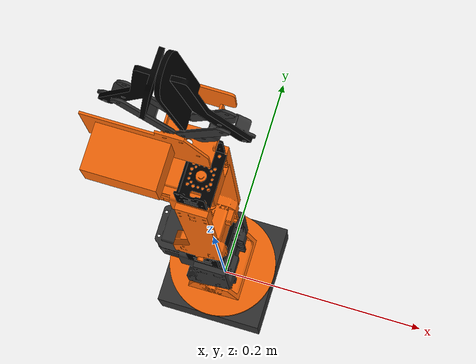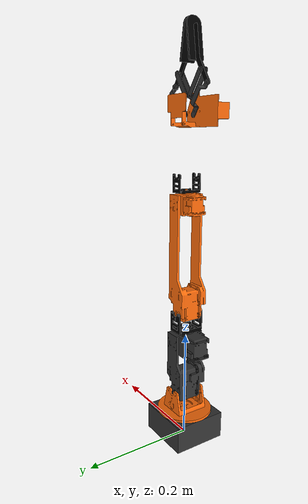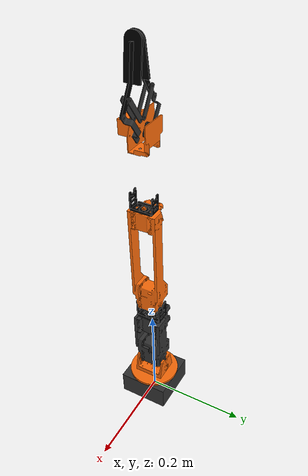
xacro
<?xml version="1.0"?>

<robot name="clam"
    xmlns:sensor="http://playerstage.sourceforge.net/gazebo/xmlschema/#sensor"
    xmlns:controller="http://playerstage.sourceforge.net/gazebo/xmlschema/#controller"
    xmlns:interface="http://playerstage.sourceforge.net/gazebo/xmlschema/#interface">

  <!-- Include materials -->
  <include filename="$(find clam_description)/urdf/materials.urdf.xacro" />

  <!-- Constants -->
  <property name="M_SCALE" value="0.001 0.001 0.001"/>
  <property name="M_PI" value="3.14159"/>

  <!-- BASE LINK -->

  <link name="base_link">
    <visual>
      <origin xyz="0 0 0" rpy="${M_PI/2} 0 0" /> <!-- rotate PI/2 -->
      <geometry>
	<mesh filename="package://clam_description/stl/base_link.STL" scale="${M_SCALE}" />
      </geometry>
      <material name="Grey" />
    </visual>

    <collision>
      <origin xyz="0 0 0" rpy="${M_PI/2} 0 0" /> <!-- rotate PI/2 -->
      <geometry>
	<mesh filename="package://clam_description/stl/base_link_simple.STL" scale="${M_SCALE}" />
      </geometry>
    </collision>>

    <inertial>
      <mass value="25" />
      <inertia ixx="1.0" ixy ="0.0" ixz="0.0" iyy="1.0" iyz="0.0" izz="1.0" />
    </inertial>
  </link>

  <joint name="shoulder_pan_joint" type="revolute">
    <parent link="base_link"/>
    <child link="shoulder_pan_link"/>
    <origin xyz="0 0 0.05" rpy="0 ${M_PI/2} ${M_PI*0}" />
    <axis xyz="-1 0 0" />
    <limit effort="300" velocity="1" lower="-2.61799387799" upper="1.98394848567"/>
    <dynamics damping="50" friction="1"/>
  </joint>

  <!-- SHOULDER PAN LINK -->
  <link name="shoulder_pan_link" >
    <visual>
      <origin xyz="0 0 0" rpy="0 0 ${M_PI/2}" />
      <geometry>
	<mesh filename="package://clam_description/stl/shoulder_pan_link.STL" scale="${M_SCALE}" />
      </geometry>
      <material name="Orange" />
    </visual>

    <collision>
      <origin xyz="0 0 0" rpy="0 0 ${M_PI/2}" />
      <geometry>
	<mesh filename="package://clam_description/stl/shoulder_pan_link_simple.STL" scale="${M_SCALE}" />
      </geometry>
    </collision>
  </link>

  <joint name="shoulder_pitch_joint" type="revolute">
    <parent link="shoulder_pan_link"/>
    <child link="shoulder_pitch_link"/>
    <origin xyz="-0.041 0.0 0.0" rpy="-${M_PI/2} 0 ${M_PI/2}" />
    <axis xyz="1 0 0" />
    <limit effort="300" velocity="1" lower="-1.19962513147" upper="1.89994105047" />
    <dynamics damping="50" friction="1"/>
  </joint>

  <!-- SHOULDER PITCH LINK -->
  <link name="shoulder_pitch_link" >
    <visual>
      <origin xyz="-0.002 0 -0.000" rpy="${M_PI/2} ${M_PI} ${M_PI/2}" />
      <geometry>
	<mesh filename="package://clam_description/stl/shoulder_pitch_link.STL" scale="${M_SCALE}" />
      </geometry>
      <material name="Grey" />
    </visual>

    <collision>
      <origin xyz="-0.002 0 -0.000" rpy="${M_PI/2} ${M_PI} ${M_PI/2}" />
      <geometry>
	<mesh filename="package://clam_description/stl/shoulder_pitch_link_simple.STL" scale="${M_SCALE}" />
      </geometry>
    </collision>
  </link>

  <joint name="elbow_roll_joint" type="revolute">
    <parent link="shoulder_pitch_link"/>
    <child link="elbow_roll_link"/>
    <origin xyz="-0.001 0 0.121" rpy="${M_PI} ${M_PI/2} 0" />
    <axis xyz="-1 0 0" />
    <limit effort="300" velocity="1" lower="-2.61799387799" upper="0.705631162427" />
    <dynamics damping="50" friction="1"/>
  </joint>

  <!-- ELBOW ROLL LINK -->
  <link name="elbow_roll_link" >
    <visual>
      <origin xyz="-0.035 0.0 0.0" rpy="${M_PI} ${M_PI/2} ${M_PI/2}" />
      <geometry>
	<mesh filename="package://clam_description/stl/elbow_roll_link.STL" scale="${M_SCALE}" />
      </geometry>
      <material name="Black" />
    </visual>

    <collision>
      <origin xyz="-0.035 0.0 0.0" rpy="${M_PI} ${M_PI/2} ${M_PI/2}" />
      <geometry>
	<mesh filename="package://clam_description/stl/elbow_roll_link_simple.STL" scale="${M_SCALE}" />
      </geometry>
    </collision>
  </link>

  <joint name="elbow_pitch_joint" type="revolute">
    <parent link="elbow_roll_link"/>
    <child link="elbow_pitch_link"/>
    <origin xyz="-0.035 0 0.0009" rpy="0 ${M_PI/2} 0" />
    <axis xyz="1 0 0" />
    <limit effort="300" velocity="1" lower="-1.5953400194" upper="1.93281579274" />
    <dynamics damping="50" friction="1"/>
  </joint>

  <!-- ELBOW PITCH LINK -->
  <link name="elbow_pitch_link" >
    <visual>
      <origin xyz="0.0 0 -${0.035*0}" rpy="${M_PI/2} 0 ${M_PI/2+M_PI}" />
      <geometry>
	<mesh filename="package://clam_description/stl/elbow_pitch_link.STL" scale="${M_SCALE}" />
      </geometry>
      <material name="Orange" />
    </visual>

    <collision>
      <origin xyz="0.0 0 -${0.035*0}" rpy="${M_PI/2} 0 ${M_PI/2+M_PI}" />
      <geometry>
	<mesh filename="package://clam_description/stl/elbow_pitch_link_simple.STL" scale="${M_SCALE}" />
      </geometry>
    </collision>
  </link>

  <joint name="wrist_roll_joint" type="revolute">
    <parent link="elbow_pitch_link"/>
    <child link="wrist_roll_link"/>
    <origin xyz="0.0 0.008 -.248" rpy="0 ${M_PI/2} ${M_PI}" />
    <axis xyz="1 0 0" />
    <limit effort="300" velocity="1" lower="-2.61799387799" upper="2.6128806087" />
    <dynamics damping="50" friction="1"/>
  </joint>

  <!-- WRIST ROLL LINK -->
  <link name="wrist_roll_link" >
    <visual>
      <origin xyz="0 0 0" rpy="0 ${M_PI/2} ${M_PI/2}" />
      <geometry>
	<mesh filename="package://clam_description/stl/wrist_roll_link.STL" scale="${M_SCALE}" />
      </geometry>
      <material name="Black" />
    </visual>

    <collision>
      <origin xyz="0 0 0" rpy="0 ${M_PI/2} ${M_PI/2}" />
      <geometry>
	<mesh filename="package://clam_description/stl/wrist_roll_link_simple.STL" scale="${M_SCALE}" />
      </geometry>
    </collision>
  </link>

  <joint name="wrist_pitch_joint" type="revolute">
    <parent link="wrist_roll_link"/>
    <child link="wrist_pitch_link"/>
    <origin xyz="0.0 0.0 ${1*0.002}" rpy="0 ${M_PI/2} 0" />
    <axis xyz="1 0 0" />
    <limit effort="300" velocity="1" lower="-1.5953400194" upper="1.98394848567" />
    <dynamics damping="50" friction="1"/>
  </joint>

  <!-- WRIST PITCH LINK -->
  <link name="wrist_pitch_link">
    <visual>
      <origin xyz="0 0 0" rpy="${M_PI} -${M_PI/2} 0" />
      <geometry>
	<mesh filename="package://clam_description/stl/wrist_pitch_link.STL" scale="${M_SCALE}" />
      </geometry>
      <material name="Grey" />
    </visual>

    <collision>
      <origin xyz="0 0 0" rpy="${M_PI} -${M_PI/2} 0" />
      <geometry>
	<mesh filename="package://clam_description/stl/wrist_pitch_link_simple.STL" scale="${M_SCALE}" />
      </geometry>
    </collision>
  </link>

  <joint name="gripper_roll_joint" type="revolute">
    <parent link="wrist_pitch_link"/>
    <child link="gripper_roll_link"/>
    <origin xyz="0 0 0.08" rpy="0 -${M_PI/2} 0" />
    <axis xyz="1 0 0" />
    <limit effort="300" velocity="1" lower="-2.61799387799" upper="2.6128806087" />
    <dynamics damping="50" friction="1"/>
  </joint>

  <!-- GRIPPER ROLL LINK -->
  <link name="gripper_roll_link">
    <visual>
      <origin xyz="0 0 0" rpy="0 0 0" />
      <geometry>
	<mesh filename="package://clam_description/stl/gripper_grip_link.STL" scale="1 1 1" />
      </geometry>
      <material name="Orange" />
    </visual>
    <collision>
      <origin xyz="0 0 0" rpy="0 0 0" />
      <geometry>
	<mesh filename="package://clam_description/stl/gripper_grip_link.STL" scale="1 1 1" />
      </geometry>
    </collision>
  </link>

  <joint name="l_gripper_aft_link_joint" type="revolute">
    <parent link="gripper_roll_link"/>
    <child link="l_gripper_aft_link"/>
    <origin xyz="0.025 0.0169 0" rpy="0 -${M_PI/2} ${34.58*M_PI/180}" />
    <axis xyz="1 0 0" />
    <limit effort="300" velocity="1" lower="${0*M_PI/180}" upper="${53*M_PI/180}" />
    <dynamics damping="50" friction="1"/>
  </joint>

  <joint name="r_gripper_aft_link_joint" type="revolute">
    <parent link="gripper_roll_link"/>
    <child link="r_gripper_aft_link"/>
    <origin xyz="0.025 -0.0117 0" rpy="0 -${M_PI/2} ${-34.58*M_PI/180}" />
    <axis xyz="1 0 0" />
    <limit effort="300" velocity="1" lower="-3.14" upper="3.14" />
    <mimic joint="l_gripper_aft_link_joint" multiplier="-1.0" offset="0.0" />
    <dynamics damping="50" friction="1"/>
  </joint>

  <joint name="l_gripper_fwd_link_joint" type="revolute">
    <parent link="gripper_roll_link"/>
    <child link="l_gripper_fwd_link"/>
    <origin xyz="0.05 0.0074 0.007" rpy="0 -${M_PI/2} ${214.58*M_PI/180}" />
    <axis xyz="1 0 0" />
    <limit effort="300" velocity="1" lower="0" upper="1.57" />
    <mimic joint="l_gripper_aft_link_joint" multiplier="1.0" offset="0" />
    <dynamics damping="50" friction="1"/>
  </joint>

  <joint name="r_gripper_fwd_link_joint" type="revolute">
    <parent link="gripper_roll_link"/>
    <child link="r_gripper_fwd_link"/>
    <origin xyz="0.05 -0.0026 0.007" rpy="0 -${M_PI/2} ${145.42*M_PI/180}" />
    <axis xyz="1 0 0" />
    <limit effort="300" velocity="1" lower="-1.57" upper="0" />
    <mimic joint="l_gripper_aft_link_joint" multiplier="-1.0" offset="0" />
    <dynamics damping="50" friction="1"/>
  </joint>

  <!-- LEFT GRIPPER FWD LINK -->
  <link name="l_gripper_fwd_link">
    <visual>
      <origin xyz="0 0 0" rpy="0 0 0" />
      <geometry>
	<mesh filename="package://clam_description/stl/l_gripper_fwd_link.STL" scale="1 1 1" />
      </geometry>
      <material name="Grey" />
    </visual>
    <collision>
      <origin xyz="0 0 0" rpy="0 0 0" />
      <geometry>
	<mesh filename="package://clam_description/stl/l_gripper_fwd_lik.STL" scale="1 1 1" />
      </geometry>
    </collision>
  </link>

  <!-- RIGHT GRIPPER FWD LINK -->
  <link name="r_gripper_fwd_link">
    <visual>
      <origin xyz="0 0 0" rpy="0 0 0" />
      <geometry>
	<mesh filename="package://clam_description/stl/r_gripper_fwd_link.STL" scale="1 1 1" />
      </geometry>
      <material name="Grey" />
    </visual>
    <collision>
      <origin xyz="0 0 0" rpy="0 0 0" />
      <geometry>
	<mesh filename="package://clam_description/stl/r_gripper_fwd_link.STL" scale="1 1 1" />
      </geometry>
    </collision>
  </link>

  <!-- LEFT GRIPPER AFT LINK -->
  <link name="l_gripper_aft_link">
    <visual>
      <origin xyz="0 0 0" rpy="0 0 0" />
      <geometry>
	<mesh filename="package://clam_description/stl/l_gripper_aft_link.STL" scale="1 1 1" />
      </geometry>
      <material name="Grey" />
    </visual>
    <collision>
      <origin xyz="0 0 0" rpy="0 0 0" />
      <geometry>
	<mesh filename="package://clam_description/stlf/l_gripper_aft_link.STL" scale="1 1 1" />
      </geometry>
    </collision>
  </link>

  <joint name="l_gripper_aft_pincher_joint" type="continuous">
    <parent link="l_gripper_aft_link"/>
    <child link="l_gripper_pincher"/>
    <origin xyz="0.0032 0 -0.0508" rpy="${203.27*M_PI/180} 0 0" />
    <axis xyz="1 0 0" />
    <limit effort="300" velocity="1" lower="-1.57" upper="1.57" />
    <mimic joint="l_gripper_aft_link_joint" multiplier="-1.0" offset="0" />
    <dynamics damping="50" friction="1"/>
  </joint>

  <!-- RIGHT GRIPPER AFT LINK -->
  <link name="r_gripper_aft_link">
    <visual>
      <origin xyz="0 0 0" rpy="0 0 0" />
      <geometry>
	<mesh filename="package://clam_description/stl/r_gripper_aft_link.STL" scale="1 1 1" />
      </geometry>
      <material name="Grey" />
    </visual>
    <collision>
      <origin xyz="0 0 0" rpy="0 0 0" />
      <geometry>
	<mesh filename="package://clam_description/stl/r_gripper_aft_link.STL" scale="1 1 1" />
      </geometry>
    </collision>
  </link>

  <joint name="r_gripper_aft_pincher_joint" type="revolute">
    <parent link="r_gripper_aft_link"/>
    <child link="r_gripper_pincher"/>
    <origin xyz="0 0 -0.0508" rpy="${23.27*M_PI/180} ${M_PI} 0" />
    <axis xyz="1 0 0" />
    <limit effort="300" velocity="1" lower="0" upper="0.01" />
    <mimic joint="l_gripper_aft_link_joint" multiplier="-1.0" offset="0" />
    <dynamics damping="50" friction="1"/>
  </joint>

<!-- LEFT GRIPPER PINCHER -->
  <link name="l_gripper_pincher">
    <visual>
      <origin xyz="0 0 0" rpy="0 0 0" />
      <geometry>
	<mesh filename="package://clam_description/stl/l_gripper_pincher.STL" scale="1 1 1" />
      </geometry>
      <material name="Black" />
    </visual>
    <collision>
      <origin xyz="0 0 0" rpy="0 0 0" />
      <geometry>
	<mesh filename="package://clam_description/stl/l_gripper_pincher.STL" scale="1 1 1" />
      </geometry>
    </collision>
  </link>

<!-- RIGHT GRIPPER PINCHER -->
  <link name="r_gripper_pincher">
    <visual>
      <origin xyz="0 0 0" rpy="0 0 0" />
      <geometry>
	<mesh filename="package://clam_description/stl/r_gripper_pincher.STL" scale="1 1 1" />
      </geometry>
      <material name="Black" />
    </visual>
    <collision>
      <origin xyz="0 0 0" rpy="0 0 0" />
      <geometry>
	<mesh filename="package://clam_description/stl/r_gripper_pincher.STL" scale="1 1 1" />
      </geometry>
    </collision>
  </link>

</robot>

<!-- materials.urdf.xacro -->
<robot>

    <material name="Black">
        <color rgba="0.0 0.0 0.0 1.0"/>
    </material>

    <material name="Blue">
        <color rgba="0.0 0.0 0.8 1.0"/>
    </material>

    <material name="Green">
        <color rgba="0.0 0.8 0.0 1.0"/>
    </material>

    <material name="Grey">
        <color rgba="0.2 0.2 0.2 1.0"/>
    </material>

    <material name="Orange">
        <color rgba="${255/255} ${108/255} ${10/255} 1.0"/>
    </material>

    <material name="Red">
        <color rgba="0.8 0.0 0.0 1.0"/>
    </material>

    <material name="White">
        <color rgba="1.0 1.0 1.0 1.0"/>
    </material>

    <material name="GunMetalBrushedAluminum">
        <texture filename="package://clam_description/media/gun_metal_brushed_aluminum.jpg" />
    </material>

</robot>
